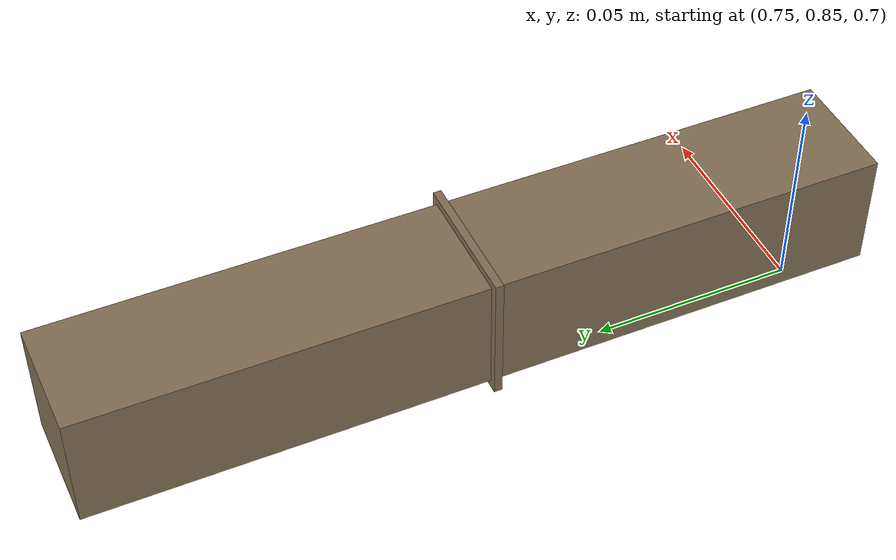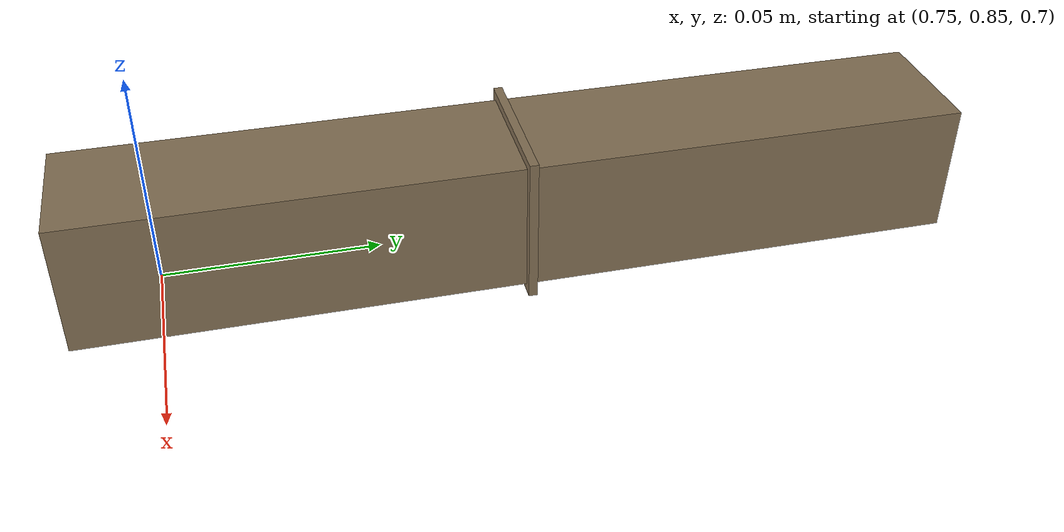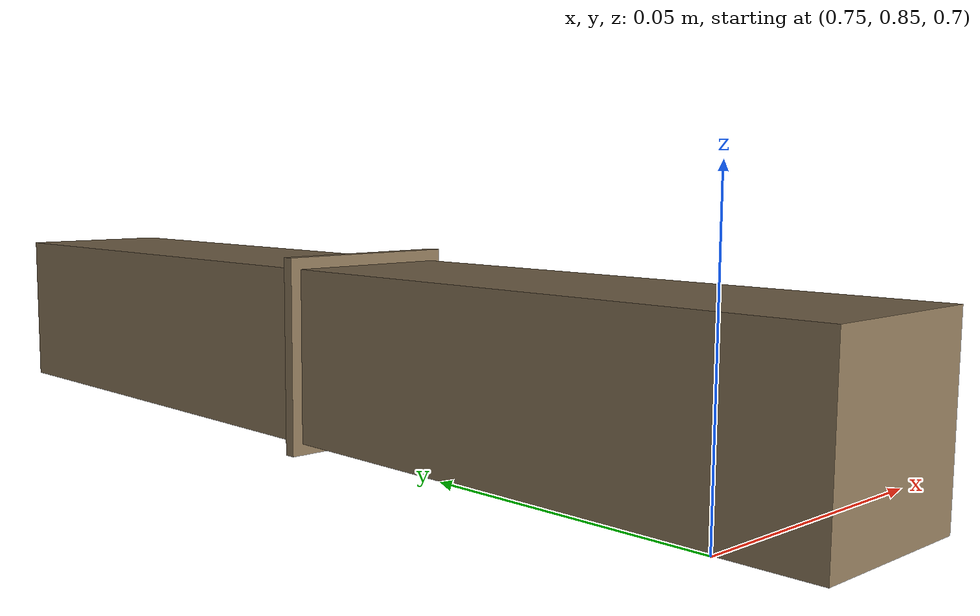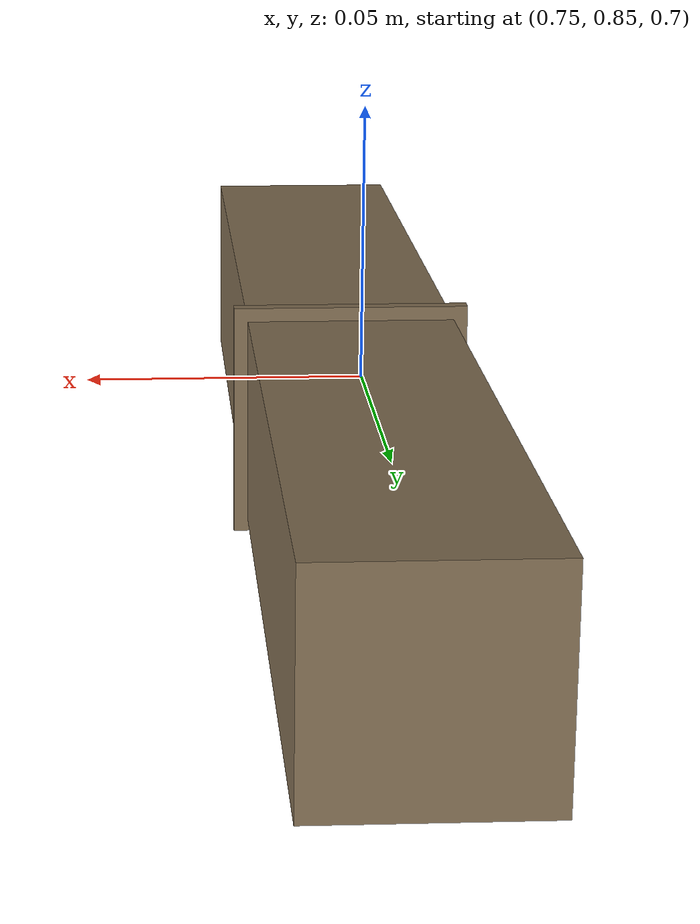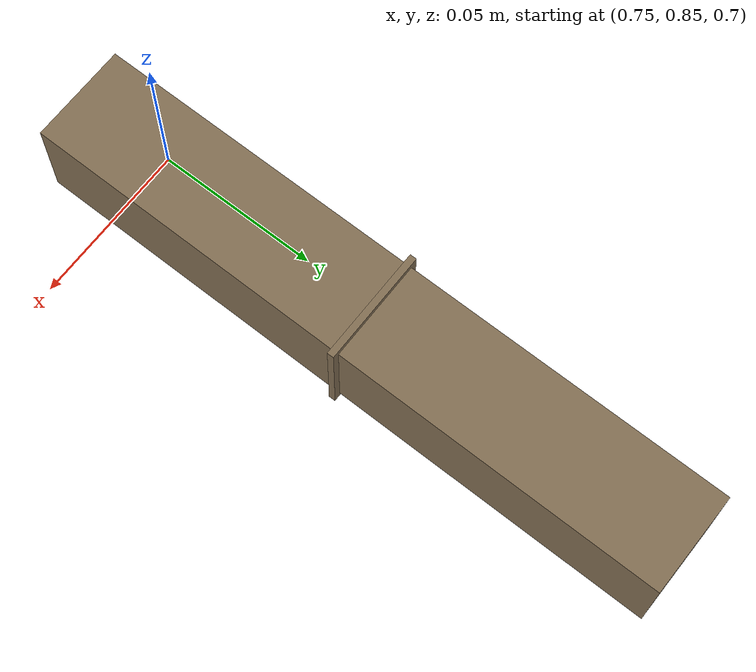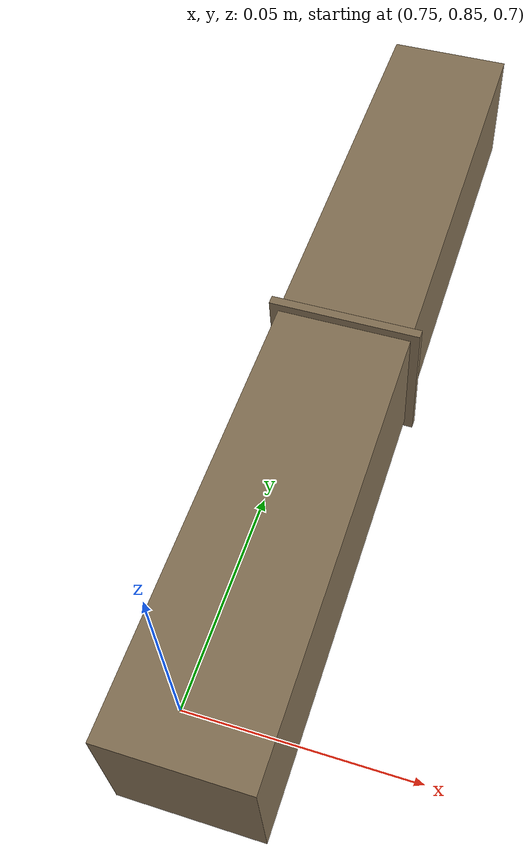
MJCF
<mujoco>
  <worldbody>
    <body name="cushion_recovery" pos=".76 0.93 0.717" quat="1 0 0 0">
      <joint name="cushion_recovery_joint" type="free" frictionloss="0.01" />
      <geom name="cushion_recovery_lower" condim="4" solimp="0.9 0.95 0.001" solref="0.02 1" friction="2 0.1 0.001" pos="0 0.05 0" type="box" size=".015 .049 .015"  rgba="0.51764706 0.43921569 0.32941176 1"/>
      <geom name="cushion_recovery_stopper" condim="4" solimp="0.9 0.95 0.001" solref="0.02 1" friction="2 0.1 0.001" pos="0 0 0" type="box" size=".017 .001 .017"  rgba="0.51764706 0.43921569 0.32941176 1"/>
      <geom name="cushion_recovery_upper" condim="4" solimp="0.9 0.95 0.001" solref="0.02 1" friction="2 0.1 0.001" pos="0 -0.05 0" type="box" size=".015 .049 .015"  rgba="0.51764706 0.43921569 0.32941176 1"/>
      <inertial pos="0 0 0" mass="0.01" diaginertia="0.002 0.002 0.002" />
    </body>
  </worldbody>
</mujoco>
